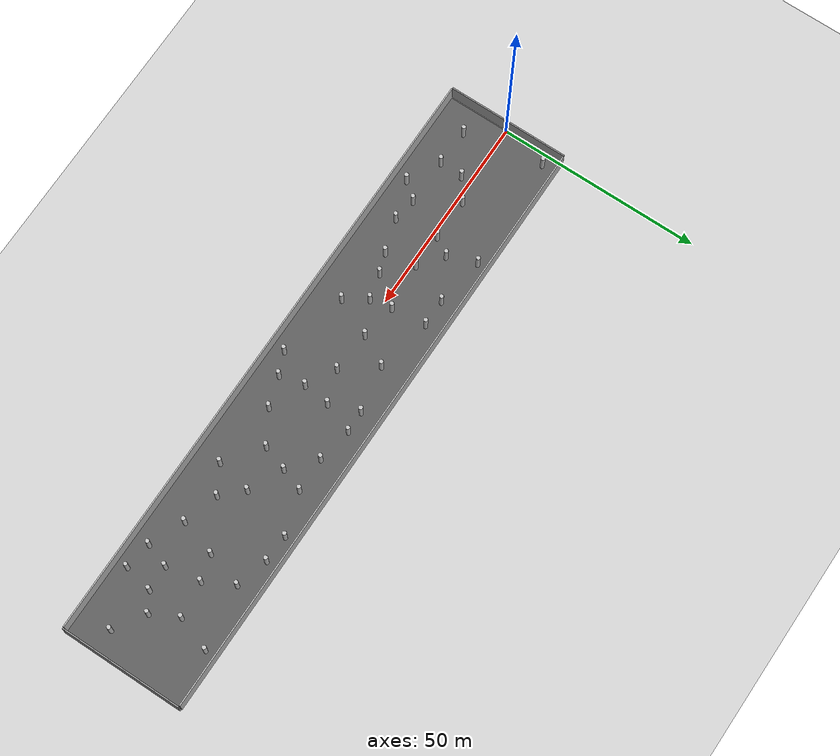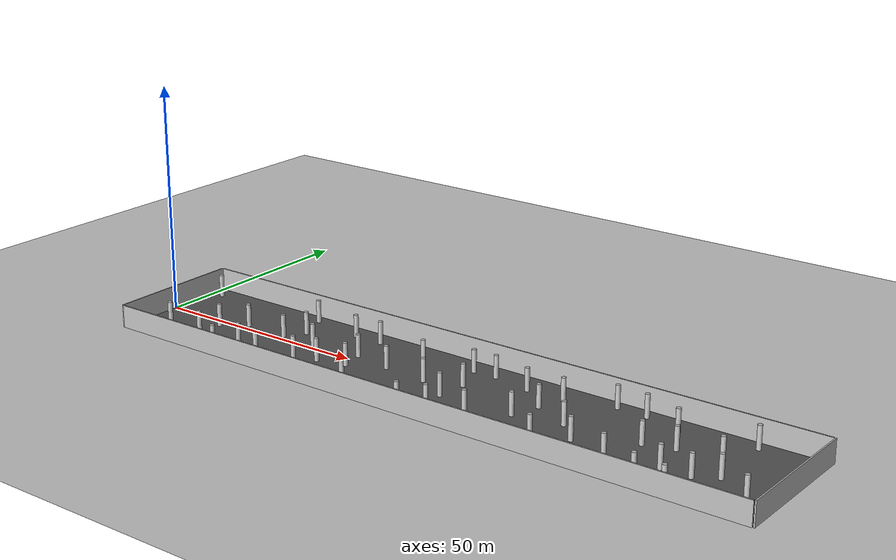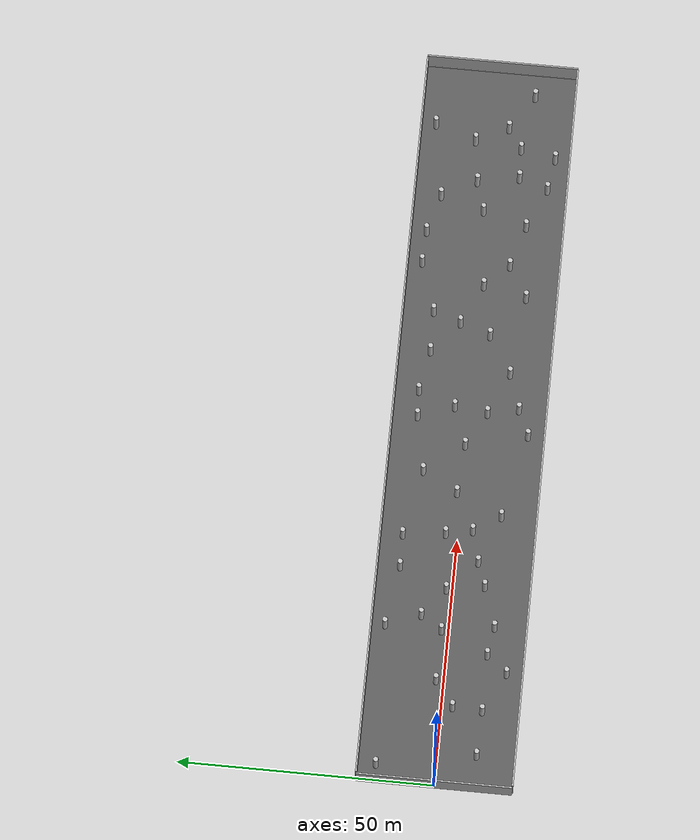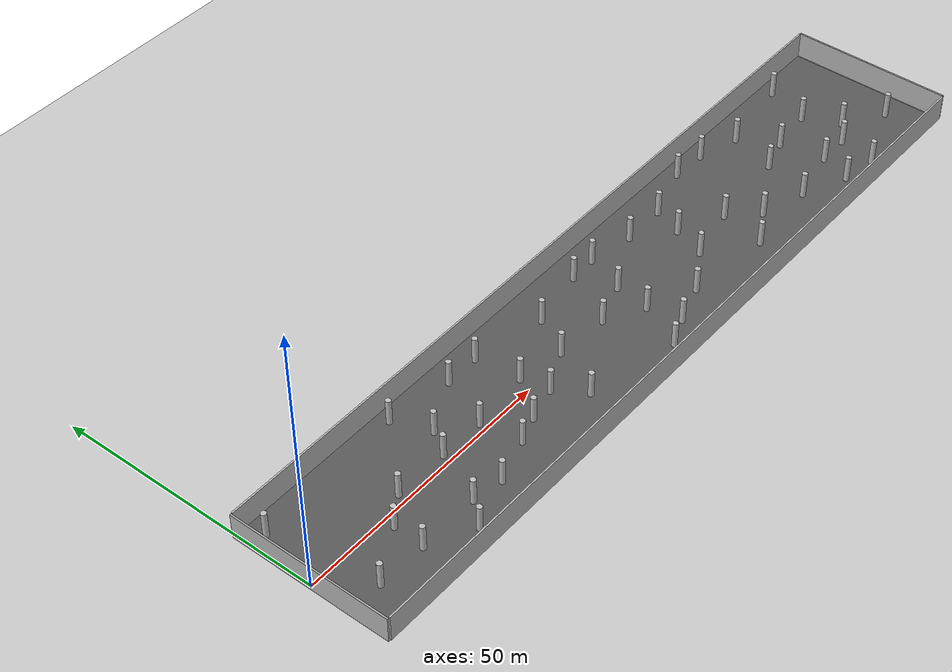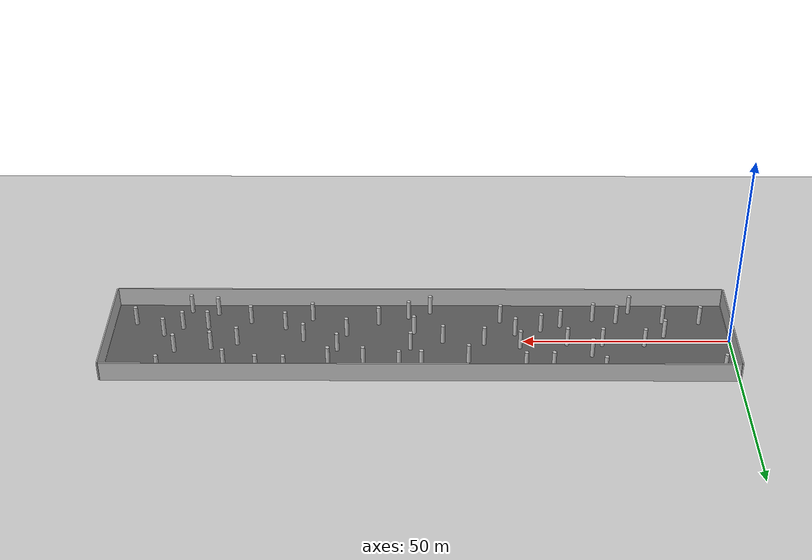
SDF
<?xml version="1.0" ?>
<sdf version="1.5">
  <world name="random_corridor_generated">
    <include><uri>model://sun</uri></include>
    <include><uri>model://ground_plane</uri></include>

    <scene>
      <ambient>0.45 0.45 0.45 1.0</ambient>
      <background>0.82 0.88 0.95 1.0</background>
      <shadows>true</shadows>
    </scene>

    <gui fullscreen="0">
      <camera name="user_camera">
        <pose>75.0 0.0 90.0 0.0 1.35 0.0</pose>
        <view_controller>fps</view_controller>
        <projection_type>perspective</projection_type>
      </camera>
    </gui>

    <model name="corridor_floor">
      <static>true</static>
      <pose>75 0 0.01 0 0 0</pose>
      <link name="link">
        <collision name="collision">
          <geometry><box><size>150 30 0.02</size></box></geometry>
        </collision>
        <visual name="visual">
          <geometry><box><size>150 30 0.02</size></box></geometry>
          <material>
            <ambient>0.25 0.25 0.25 1</ambient>
            <diffuse>0.35 0.35 0.35 1</diffuse>
          </material>
        </visual>
      </link>
    </model>

    <physics name="default_physics" default="0" type="ode">
      <gravity>0 0 -9.8066</gravity>
      <ode>
        <solver>
          <type>quick</type>
          <iters>10</iters>
          <sor>1.3</sor>
          <use_dynamic_moi_rescaling>0</use_dynamic_moi_rescaling>
        </solver>
        <constraints>
          <cfm>0</cfm>
          <erp>0.2</erp>
          <contact_max_correcting_vel>100</contact_max_correcting_vel>
          <contact_surface_layer>0.001</contact_surface_layer>
        </constraints>
      </ode>
      <max_step_size>0.004</max_step_size>
      <real_time_factor>1</real_time_factor>
      <real_time_update_rate>250</real_time_update_rate>
      <magnetic_field>6.0e-6 2.3e-5 -4.2e-5</magnetic_field>
    </physics>

    <model name="left_wall">
      <static>true</static>
      <pose>75 15.15 2.5 0 0 0</pose>
      <link name="link">
        <collision name="collision">
          <geometry><box><size>150 0.3 5</size></box></geometry>
        </collision>
        <visual name="visual">
          <geometry><box><size>150 0.3 5</size></box></geometry>
        </visual>
      </link>
    </model>

    <model name="right_wall">
      <static>true</static>
      <pose>75 -15.15 2.5 0 0 0</pose>
      <link name="link">
        <collision name="collision">
          <geometry><box><size>150 0.3 5</size></box></geometry>
        </collision>
        <visual name="visual">
          <geometry><box><size>150 0.3 5</size></box></geometry>
        </visual>
      </link>
    </model>

    <model name="start_wall">
      <static>true</static>
      <pose>-0.3 0 2.5 0 0 0</pose>
      <link name="link">
        <collision name="collision">
          <geometry><box><size>0.3 30.3 5</size></box></geometry>
        </collision>
        <visual name="visual">
          <geometry><box><size>0.3 30.3 5</size></box></geometry>
        </visual>
      </link>
    </model>

    <model name="end_wall">
      <static>true</static>
      <pose>150.3 0 2.5 0 0 0</pose>
      <link name="link">
        <collision name="collision">
          <geometry><box><size>0.3 30.3 5</size></box></geometry>
        </collision>
        <visual name="visual">
          <geometry><box><size>0.3 30.3 5</size></box></geometry>
        </visual>
      </link>
    </model>

    <include><name>cylinder_00</name><uri>model://cylinder_r05_h5</uri><pose>137.363 -2.491 2.5 0 0 0</pose></include>
    <include><name>cylinder_01</name><uri>model://cylinder_r05_h5</uri><pose>134.101 3.982 2.5 0 0 0</pose></include>
    <include><name>cylinder_02</name><uri>model://cylinder_r05_h5</uri><pose>33.748 5.612 2.5 0 0 0</pose></include>
    <include><name>cylinder_03</name><uri>model://cylinder_r05_h5</uri><pose>39.443 1.216 2.5 0 0 0</pose></include>
    <include><name>cylinder_04</name><uri>model://cylinder_r05_h5</uri><pose>15.375 -7.946 2.5 0 0 0</pose></include>
    <include><name>cylinder_05</name><uri>model://cylinder_r05_h5</uri><pose>32.526 -8.836 2.5 0 0 0</pose></include>
    <include><name>cylinder_06</name><uri>model://cylinder_r05_h5</uri><pose>124.895 -11.245 2.5 0 0 0</pose></include>
    <include><name>cylinder_07</name><uri>model://cylinder_r05_h5</uri><pose>116.515 -7.705 2.5 0 0 0</pose></include>
    <include><name>cylinder_08</name><uri>model://cylinder_r05_h5</uri><pose>92.837 -2.601 2.5 0 0 0</pose></include>
    <include><name>cylinder_09</name><uri>model://cylinder_r05_h5</uri><pose>113.759 11.990 2.5 0 0 0</pose></include>
    <include><name>cylinder_10</name><uri>model://cylinder_r05_h5</uri><pose>76.454 -3.536 2.5 0 0 0</pose></include>
    <include><name>cylinder_11</name><uri>model://cylinder_r05_h5</uri><pose>133.016 -5.285 2.5 0 0 0</pose></include>
    <include><name>cylinder_12</name><uri>model://cylinder_r05_h5</uri><pose>2.865 11.561 2.5 0 0 0</pose></include>
    <include><name>cylinder_13</name><uri>model://cylinder_r05_h5</uri><pose>79.957 10.375 2.5 0 0 0</pose></include>
    <include><name>cylinder_14</name><uri>model://cylinder_r05_h5</uri><pose>50.821 2.385 2.5 0 0 0</pose></include>
    <include><name>cylinder_15</name><uri>model://cylinder_r05_h5</uri><pose>119.172 1.079 2.5 0 0 0</pose></include>
    <include><name>cylinder_16</name><uri>model://cylinder_r05_h5</uri><pose>74.648 10.160 2.5 0 0 0</pose></include>
    <include><name>cylinder_17</name><uri>model://cylinder_r05_h5</uri><pose>15.660 -2.135 2.5 0 0 0</pose></include>
    <include><name>cylinder_18</name><uri>model://cylinder_r05_h5</uri><pose>125.373 2.855 2.5 0 0 0</pose></include>
    <include><name>cylinder_19</name><uri>model://cylinder_r05_h5</uri><pose>107.105 12.266 2.5 0 0 0</pose></include>
    <include><name>cylinder_20</name><uri>model://cylinder_r05_h5</uri><pose>23.361 -11.996 2.5 0 0 0</pose></include>
    <include><name>cylinder_21</name><uri>model://cylinder_r05_h5</uri><pose>77.268 2.994 2.5 0 0 0</pose></include>
    <include><name>cylinder_22</name><uri>model://cylinder_r05_h5</uri><pose>96.876 8.996 2.5 0 0 0</pose></include>
    <include><name>cylinder_23</name><uri>model://cylinder_r05_h5</uri><pose>69.465 0.244 2.5 0 0 0</pose></include>
    <include><name>cylinder_24</name><uri>model://cylinder_r05_h5</uri><pose>131.561 -12.251 2.5 0 0 0</pose></include>
    <include><name>cylinder_25</name><uri>model://cylinder_r05_h5</uri><pose>20.795 1.528 2.5 0 0 0</pose></include>
    <include><name>cylinder_26</name><uri>model://cylinder_r05_h5</uri><pose>63.389 7.989 2.5 0 0 0</pose></include>
    <include><name>cylinder_27</name><uri>model://cylinder_r05_h5</uri><pose>51.846 -2.854 2.5 0 0 0</pose></include>
    <include><name>cylinder_28</name><uri>model://cylinder_r05_h5</uri><pose>136.982 12.226 2.5 0 0 0</pose></include>
    <include><name>cylinder_29</name><uri>model://cylinder_r05_h5</uri><pose>72.462 -11.907 2.5 0 0 0</pose></include>
    <include><name>cylinder_30</name><uri>model://cylinder_r05_h5</uri><pose>101.401 -8.998 2.5 0 0 0</pose></include>
    <include><name>cylinder_31</name><uri>model://cylinder_r05_h5</uri><pose>88.484 8.873 2.5 0 0 0</pose></include>
    <include><name>cylinder_32</name><uri>model://cylinder_r05_h5</uri><pose>85.133 -7.264 2.5 0 0 0</pose></include>
    <include><name>cylinder_33</name><uri>model://cylinder_r05_h5</uri><pose>121.671 9.811 2.5 0 0 0</pose></include>
    <include><name>cylinder_34</name><uri>model://cylinder_r05_h5</uri><pose>77.788 -9.664 2.5 0 0 0</pose></include>
    <include><name>cylinder_35</name><uri>model://cylinder_r05_h5</uri><pose>59.469 0.954 2.5 0 0 0</pose></include>
    <include><name>cylinder_36</name><uri>model://cylinder_r05_h5</uri><pose>30.964 1.398 2.5 0 0 0</pose></include>
    <include><name>cylinder_37</name><uri>model://cylinder_r05_h5</uri><pose>144.657 -7.133 2.5 0 0 0</pose></include>
    <include><name>cylinder_38</name><uri>model://cylinder_r05_h5</uri><pose>103.224 -0.410 2.5 0 0 0</pose></include>
    <include><name>cylinder_39</name><uri>model://cylinder_r05_h5</uri><pose>107.909 -5.223 2.5 0 0 0</pose></include>
    <include><name>cylinder_40</name><uri>model://cylinder_r05_h5</uri><pose>49.839 10.773 2.5 0 0 0</pose></include>
    <include><name>cylinder_41</name><uri>model://cylinder_r05_h5</uri><pose>55.318 -8.169 2.5 0 0 0</pose></include>
    <include><name>cylinder_42</name><uri>model://cylinder_r05_h5</uri><pose>40.653 -6.217 2.5 0 0 0</pose></include>
    <include><name>cylinder_43</name><uri>model://cylinder_r05_h5</uri><pose>126.878 -5.479 2.5 0 0 0</pose></include>
    <include><name>cylinder_44</name><uri>model://cylinder_r05_h5</uri><pose>45.498 -4.483 2.5 0 0 0</pose></include>
    <include><name>cylinder_45</name><uri>model://cylinder_r05_h5</uri><pose>26.813 -7.948 2.5 0 0 0</pose></include>
    <include><name>cylinder_46</name><uri>model://cylinder_r05_h5</uri><pose>31.162 12.470 2.5 0 0 0</pose></include>
    <include><name>cylinder_47</name><uri>model://cylinder_r05_h5</uri><pose>43.288 10.667 2.5 0 0 0</pose></include>
    <include><name>cylinder_48</name><uri>model://cylinder_r05_h5</uri><pose>94.918 3.478 2.5 0 0 0</pose></include>
    <include><name>cylinder_49</name><uri>model://cylinder_r05_h5</uri><pose>6.376 -7.676 2.5 0 0 0</pose></include>

  </world>
</sdf>

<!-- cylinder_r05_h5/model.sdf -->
<sdf version="1.5">
  <model name="cylinder_r05_h5">
    <static>true</static>
    <link name="link">
      <collision name="collision">
        <geometry>
          <cylinder>
            <radius>0.5</radius>
            <length>5</length>
          </cylinder>
        </geometry>
      </collision>
      <visual name="visual">
        <geometry>
          <cylinder>
            <radius>0.5</radius>
            <length>5</length>
          </cylinder>
        </geometry>
        <material>
          <ambient>0.5 0.5 0.5 1</ambient>
          <diffuse>0.75 0.75 0.75 1</diffuse>
        </material>
      </visual>
    </link>
  </model>
</sdf>
